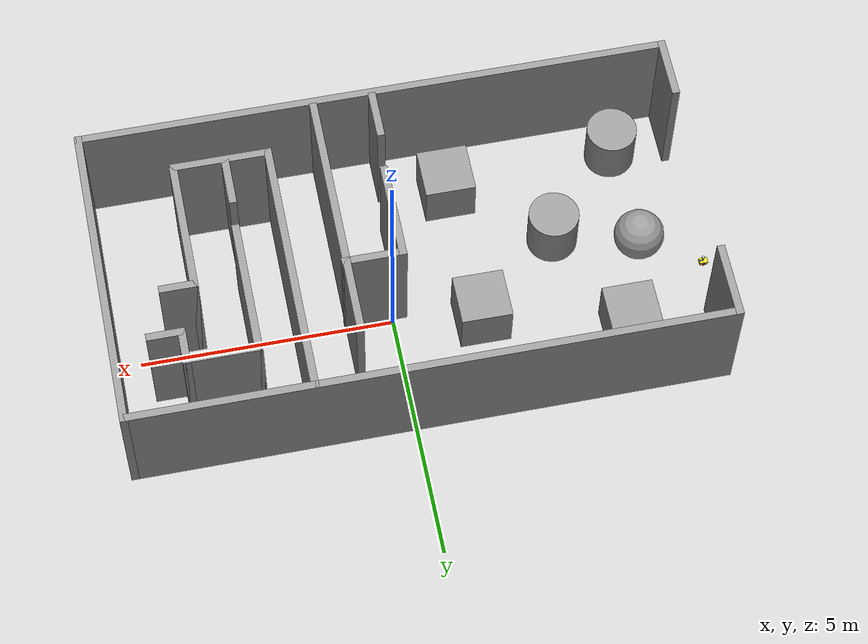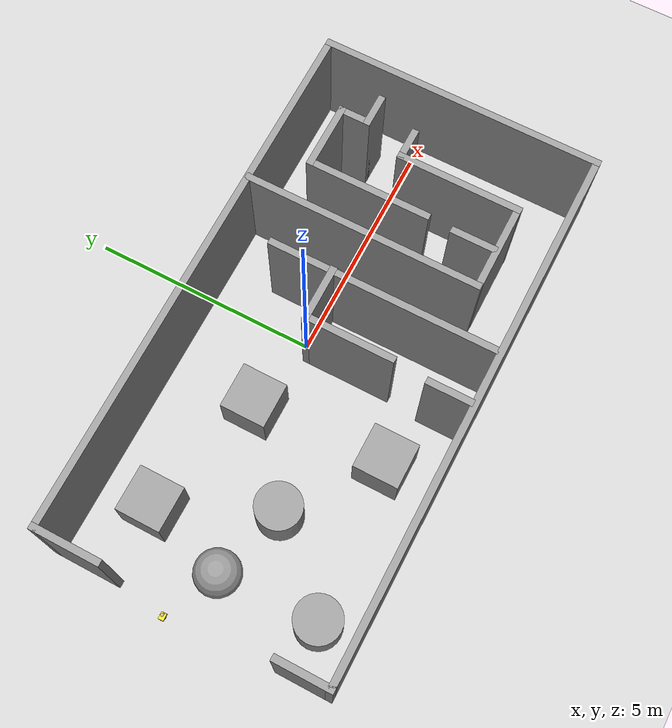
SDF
<sdf version="1.7">
 <world name="default">
  <light name="sun" type="directional">
   <pose>0 0 10 0 -0 0</pose>
   <diffuse>0.8 0.8 0.8 1</diffuse>
   <specular>0.2 0.2 0.2 1</specular>
   <attenuation>
    <range>1000</range>
    <constant>0.9</constant>
    <linear>0.01</linear>
    <quadratic>0.001</quadratic>
   </attenuation>
   <direction>-0.5 0.1 -0.9</direction>
   <spot><inner_angle>0</inner_angle><outer_angle>0</outer_angle><falloff>0</falloff></spot>
  </light>
  <model name="ground_plane">
   <static>1</static>
   <link name="link">
    <collision name="collision">
     <geometry><plane><normal>0 0 1</normal><size>100 100</size></plane></geometry>
     <surface><friction><ode><mu>100</mu><mu2>50</mu2></ode></friction></surface>
    </collision>
    <visual name="visual">
     <cast_shadows>0</cast_shadows>
     <geometry><plane><normal>0 0 1</normal><size>100 100</size></plane></geometry>
     <material>
      <script><uri>file://media/materials/scripts/gazebo.material</uri><name>Gazebo/Grey</name></script>
     </material>
    </visual>
    <kinematic>1</kinematic>
   </link>
  </model>
  <gravity>0 0 -9.8</gravity>
  <magnetic_field>6e-06 2.3e-05 -4.2e-05</magnetic_field>
  <atmosphere type="adiabatic"/>
  <physics type="ode">
   <max_step_size>0.001</max_step_size>
   <real_time_factor>1</real_time_factor>
   <real_time_update_rate>1000</real_time_update_rate>
  </physics>
  <scene><ambient>0.4 0.4 0.4 1</ambient><background>0.7 0.7 0.7 1</background><shadows>1</shadows></scene>
  <spherical_coordinates>
   <surface_model>EARTH_WGS84</surface_model>
   <latitude_deg>0</latitude_deg>
   <longitude_deg>0</longitude_deg>
   <elevation>0</elevation>
   <heading_deg>0</heading_deg>
  </spherical_coordinates>
  <model name="Untitled">
   <pose>-0.340997 -0.73255 0 0 -0 0</pose>
   <link name="Wall_0">
    <collision name="Wall_0_Collision">
     <geometry><box><size>11.75 0.15 2.5</size></box></geometry>
     <pose>0 0 1.25 0 -0 0</pose>
    </collision>
    <visual name="Wall_0_Visual">
     <pose>0 0 1.25 0 -0 0</pose>
     <geometry><box><size>11.75 0.15 2.5</size></box></geometry>
     <material>
      <script><uri>file://media/materials/scripts/gazebo.material</uri><name>Gazebo/Grey</name></script>
      <ambient>1 1 1 1</ambient>
     </material>
     <meta><layer>0</layer></meta>
    </visual>
    <pose>-0 -3.05 0 0 -0 0</pose>
   </link>
   <link name="Wall_1">
    <collision name="Wall_1_Collision">
     <geometry><box><size>6.25 0.15 2.5</size></box></geometry>
     <pose>0 0 1.25 0 -0 0</pose>
    </collision>
    <visual name="Wall_1_Visual">
     <pose>0 0 1.25 0 -0 0</pose>
     <geometry><box><size>6.25 0.15 2.5</size></box></geometry>
     <material>
      <script><uri>file://media/materials/scripts/gazebo.material</uri><name>Gazebo/Grey</name></script>
      <ambient>1 1 1 1</ambient>
     </material>
     <meta><layer>0</layer></meta>
    </visual>
    <pose>5.8 0 0 0 -0 1.5708</pose>
   </link>
   <link name="Wall_10">
    <collision name="Wall_10_Collision">
     <geometry><box><size>0.75 0.15 2.5</size></box></geometry>
     <pose>0 0 1.25 0 -0 0</pose>
    </collision>
    <visual name="Wall_10_Visual">
     <pose>0 0 1.25 0 -0 0</pose>
     <geometry><box><size>0.75 0.15 2.5</size></box></geometry>
     <material>
      <script><uri>file://media/materials/scripts/gazebo.material</uri><name>Gazebo/Grey</name></script>
      <ambient>1 1 1 1</ambient>
     </material>
     <meta><layer>0</layer></meta>
    </visual>
    <pose>4.39543 0.524299 0 0 -0 0</pose>
   </link>
   <link name="Wall_12">
    <collision name="Wall_12_Collision">
     <geometry><box><size>1 0.15 2.5</size></box></geometry>
     <pose>0 0 1.25 0 -0 0</pose>
    </collision>
    <visual name="Wall_12_Visual">
     <pose>0 0 1.25 0 -0 0</pose>
     <geometry><box><size>1 0.15 2.5</size></box></geometry>
     <material>
      <script><uri>file://media/materials/scripts/gazebo.material</uri><name>Gazebo/Grey</name></script>
      <ambient>1 1 1 1</ambient>
     </material>
     <meta><layer>0</layer></meta>
    </visual>
    <pose>3.0902 -1.57909 0 0 -0 1.5708</pose>
   </link>
   <link name="Wall_14">
    <collision name="Wall_14_Collision">
     <geometry><box><size>2.75 0.15 2.5</size></box></geometry>
     <pose>0 0 1.25 0 -0 0</pose>
    </collision>
    <visual name="Wall_14_Visual">
     <pose>0 0 1.25 0 -0 0</pose>
     <geometry><box><size>2.75 0.15 2.5</size></box></geometry>
     <material>
      <script><uri>file://media/materials/scripts/gazebo.material</uri><name>Gazebo/Grey</name></script>
      <ambient>1 1 1 1</ambient>
     </material>
     <meta><layer>0</layer></meta>
    </visual>
    <pose>3.13043 0.78431 0 0 -0 1.5708</pose>
   </link>
   <link name="Wall_15">
    <collision name="Wall_15_Collision">
     <geometry><box><size>1.5 0.15 2.5</size></box></geometry>
     <pose>0 0 1.25 0 -0 0</pose>
    </collision>
    <visual name="Wall_15_Visual">
     <pose>0 0 1.25 0 -0 0</pose>
     <geometry><box><size>1.5 0.15 2.5</size></box></geometry>
     <material>
      <script><uri>file://media/materials/scripts/gazebo.material</uri><name>Gazebo/Grey</name></script>
      <ambient>1 1 1 1</ambient>
     </material>
     <meta><layer>0</layer></meta>
    </visual>
    <pose>3.80543 2.08431 0 0 -0 0</pose>
   </link>
   <link name="Wall_16">
    <collision name="Wall_16_Collision">
     <geometry><box><size>0.75 0.15 2.5</size></box></geometry>
     <pose>0 0 1.25 0 -0 0</pose>
    </collision>
    <visual name="Wall_16_Visual">
     <pose>0 0 1.25 0 -0 0</pose>
     <geometry><box><size>0.75 0.15 2.5</size></box></geometry>
     <material>
      <script><uri>file://media/materials/scripts/gazebo.material</uri><name>Gazebo/Grey</name></script>
      <ambient>1 1 1 1</ambient>
     </material>
     <meta><layer>0</layer></meta>
    </visual>
    <pose>4.48043 1.78431 0 0 -0 -1.5708</pose>
   </link>
   <link name="Wall_17">
    <collision name="Wall_17_Collision">
     <geometry><box><size>0.75 0.15 2.5</size></box></geometry>
     <pose>0 0 1.25 0 -0 0</pose>
    </collision>
    <visual name="Wall_17_Visual">
     <pose>0 0 1.25 0 -0 0</pose>
     <geometry><box><size>0.75 0.15 2.5</size></box></geometry>
     <material>
      <script><uri>file://media/materials/scripts/gazebo.material</uri><name>Gazebo/Grey</name></script>
      <ambient>1 1 1 1</ambient>
     </material>
     <meta><layer>0</layer></meta>
    </visual>
    <pose>4.78043 1.48431 0 0 -0 0</pose>
   </link>
   <link name="Wall_19">
    <collision name="Wall_19_Collision">
     <geometry><box><size>5 0.15 2.5</size></box></geometry>
     <pose>0 0 1.25 0 -0 0</pose>
    </collision>
    <visual name="Wall_19_Visual">
     <pose>0 0 1.25 0 -0 0</pose>
     <geometry><box><size>5 0.15 2.5</size></box></geometry>
     <material>
      <script><uri>file://media/materials/scripts/gazebo.material</uri><name>Gazebo/Grey</name></script>
      <ambient>1 1 1 1</ambient>
     </material>
     <meta><layer>0</layer></meta>
    </visual>
    <pose>1.19952 -0.504318 0 0 -0 1.5708</pose>
   </link>
   <link name="Wall_2">
    <collision name="Wall_2_Collision">
     <geometry><box><size>11.75 0.15 2.5</size></box></geometry>
     <pose>0 0 1.25 0 -0 0</pose>
    </collision>
    <visual name="Wall_2_Visual">
     <pose>0 0 1.25 0 -0 0</pose>
     <geometry><box><size>11.75 0.15 2.5</size></box></geometry>
     <material>
      <script><uri>file://media/materials/scripts/gazebo.material</uri><name>Gazebo/Grey</name></script>
      <ambient>1 1 1 1</ambient>
     </material>
     <meta><layer>0</layer></meta>
    </visual>
    <pose>-0 3.05 0 0 -0 3.14159</pose>
   </link>
   <link name="Wall_21">
    <collision name="Wall_21_Collision">
     <geometry><box><size>1.25 0.15 2.5</size></box></geometry>
     <pose>0 0 1.25 0 -0 0</pose>
    </collision>
    <visual name="Wall_21_Visual">
     <pose>0 0 1.25 0 -0 0</pose>
     <geometry><box><size>1.25 0.15 2.5</size></box></geometry>
     <material>
      <script><uri>file://media/materials/scripts/gazebo.material</uri><name>Gazebo/Grey</name></script>
      <ambient>1 1 1 1</ambient>
     </material>
     <meta><layer>0</layer></meta>
    </visual>
    <pose>0.669636 0.590557 0 0 -0 3.14159</pose>
   </link>
   <link name="Wall_22">
    <collision name="Wall_22_Collision">
     <geometry><box><size>2 0.15 2.5</size></box></geometry>
     <pose>0 0 1.25 0 -0 0</pose>
    </collision>
    <visual name="Wall_22_Visual">
     <pose>0 0 1.25 0 -0 0</pose>
     <geometry><box><size>2 0.15 2.5</size></box></geometry>
     <material>
      <script><uri>file://media/materials/scripts/gazebo.material</uri><name>Gazebo/Grey</name></script>
      <ambient>1 1 1 1</ambient>
     </material>
     <meta><layer>0</layer></meta>
    </visual>
    <pose>0.119636 -0.334443 0 0 -0 -1.5708</pose>
   </link>
   <link name="Wall_24">
    <collision name="Wall_24_Collision">
     <geometry><box><size>1 0.15 2.5</size></box></geometry>
     <pose>0 0 1.25 0 -0 0</pose>
    </collision>
    <visual name="Wall_24_Visual">
     <pose>0 0 1.25 0 -0 0</pose>
     <geometry><box><size>1 0.15 2.5</size></box></geometry>
     <material>
      <script><uri>file://media/materials/scripts/gazebo.material</uri><name>Gazebo/Grey</name></script>
      <ambient>1 1 1 1</ambient>
     </material>
     <meta><layer>0</layer></meta>
    </visual>
    <pose>0.032936 -2.52443 0 0 -0 1.5708</pose>
   </link>
   <link name="Wall_3">
    <collision name="Wall_3_Collision">
     <geometry><box><size>1.5 0.15 2.5</size></box></geometry>
     <pose>0 0 1.25 0 -0 0</pose>
    </collision>
    <visual name="Wall_3_Visual">
     <pose>0 0 1.25 0 -0 0</pose>
     <geometry><box><size>1.5 0.15 2.5</size></box></geometry>
     <material>
      <script><uri>file://media/materials/scripts/gazebo.material</uri><name>Gazebo/Grey</name></script>
      <ambient>1 1 1 1</ambient>
     </material>
     <meta><layer>0</layer></meta>
    </visual>
    <pose>-5.8 2.375 0 0 -0 -1.5708</pose>
   </link>
   <link name="Wall_5">
    <collision name="Wall_5_Collision">
     <geometry><box><size>1.25 0.15 2.5</size></box></geometry>
     <pose>0 0 1.25 0 -0 0</pose>
    </collision>
    <visual name="Wall_5_Visual">
     <pose>0 0 1.25 0 -0 0</pose>
     <geometry><box><size>1.25 0.15 2.5</size></box></geometry>
     <material>
      <script><uri>file://media/materials/scripts/gazebo.material</uri><name>Gazebo/Grey</name></script>
      <ambient>1 1 1 1</ambient>
     </material>
     <meta><layer>0</layer></meta>
    </visual>
    <pose>-5.8 -2.5 0 0 -0 1.5708</pose>
   </link>
   <link name="Wall_7">
    <collision name="Wall_7_Collision">
     <geometry><box><size>5.25 0.15 2.5</size></box></geometry>
     <pose>0 0 1.25 0 -0 0</pose>
    </collision>
    <visual name="Wall_7_Visual">
     <pose>0 0 1.25 0 -0 0</pose>
     <geometry><box><size>5.25 0.15 2.5</size></box></geometry>
     <material>
      <script><uri>file://media/materials/scripts/gazebo.material</uri><name>Gazebo/Grey</name></script>
      <ambient>1 1 1 1</ambient>
     </material>
     <meta><layer>0</layer></meta>
    </visual>
    <pose>2.24543 0.474299 0 0 -0 -1.5708</pose>
   </link>
   <link name="Wall_8">
    <collision name="Wall_8_Collision">
     <geometry><box><size>2 0.15 2.5</size></box></geometry>
     <pose>0 0 1.25 0 -0 0</pose>
    </collision>
    <visual name="Wall_8_Visual">
     <pose>0 0 1.25 0 -0 0</pose>
     <geometry><box><size>2 0.15 2.5</size></box></geometry>
     <material>
      <script><uri>file://media/materials/scripts/gazebo.material</uri><name>Gazebo/Grey</name></script>
      <ambient>1 1 1 1</ambient>
     </material>
     <meta><layer>0</layer></meta>
    </visual>
    <pose>3.17043 -2.0757 0 0 -0 0</pose>
   </link>
   <link name="Wall_9">
    <collision name="Wall_9_Collision">
     <geometry><box><size>2.75 0.15 2.5</size></box></geometry>
     <pose>0 0 1.25 0 -0 0</pose>
    </collision>
    <visual name="Wall_9_Visual">
     <pose>0 0 1.25 0 -0 0</pose>
     <geometry><box><size>2.75 0.15 2.5</size></box></geometry>
     <material>
      <script><uri>file://media/materials/scripts/gazebo.material</uri><name>Gazebo/Grey</name></script>
      <ambient>1 1 1 1</ambient>
     </material>
     <meta><layer>0</layer></meta>
    </visual>
    <pose>4.09543 -0.775701 0 0 -0 1.5708</pose>
   </link>
   <static>1</static>
  </model>
  <model name="unit_box">
   <pose>-1.58745 -2.64182 0.5 0 -0 5e-06</pose>
   <link name="link">
    <inertial>
     <mass>1</mass>
     <inertia>
      <ixx>0.166667</ixx>
      <ixy>0</ixy>
      <ixz>0</ixz>
      <iyy>0.166667</iyy>
      <iyz>0</iyz>
      <izz>0.166667</izz>
     </inertia>
    </inertial>
    <collision name="collision"><geometry><box><size>1 1 1</size></box></geometry></collision>
    <visual name="visual">
     <geometry><box><size>1 1 1</size></box></geometry>
     <material>
      <script><name>Gazebo/Grey</name><uri>file://media/materials/scripts/gazebo.material</uri></script>
     </material>
    </visual>
    <kinematic>1</kinematic>
   </link>
  </model>
  <model name="unit_cylinder">
   <pose>-3.4676 -1.23387 0.499994 -4e-06 -4e-06 -0</pose>
   <link name="link">
    <inertial>
     <mass>1</mass>
     <inertia><ixx>0.145833</ixx><ixy>0</ixy><ixz>0</ixz><iyy>0.145833</iyy><iyz>0</iyz><izz>0.125</izz></inertia>
    </inertial>
    <collision name="collision">
     <geometry><cylinder><radius>0.5</radius><length>1</length></cylinder></geometry>
    </collision>
    <visual name="visual">
     <geometry><cylinder><radius>0.5</radius><length>1</length></cylinder></geometry>
     <material>
      <script><name>Gazebo/Grey</name><uri>file://media/materials/scripts/gazebo.material</uri></script>
     </material>
    </visual>
    <kinematic>1</kinematic>
   </link>
  </model>
  <model name="unit_box_0">
   <pose>-1.70471 0.287631 0.495109 6e-06 -0.009793 5e-06</pose>
   <link name="link">
    <inertial>
     <mass>1</mass>
     <inertia>
      <ixx>0.166667</ixx>
      <ixy>0</ixy>
      <ixz>0</ixz>
      <iyy>0.166667</iyy>
      <iyz>0</iyz>
      <izz>0.166667</izz>
     </inertia>
    </inertial>
    <collision name="collision"><geometry><box><size>1 1 1</size></box></geometry></collision>
    <visual name="visual">
     <geometry><box><size>1 1 1</size></box></geometry>
     <material>
      <script><name>Gazebo/Grey</name><uri>file://media/materials/scripts/gazebo.material</uri></script>
     </material>
    </visual>
    <kinematic>1</kinematic>
   </link>
  </model>
  <model name="unit_cylinder_0">
   <pose>-5.03626 -2.93689 0.499998 3e-06 4e-06 -0</pose>
   <link name="link">
    <inertial>
     <mass>1</mass>
     <inertia><ixx>0.145833</ixx><ixy>0</ixy><ixz>0</ixz><iyy>0.145833</iyy><iyz>0</iyz><izz>0.125</izz></inertia>
    </inertial>
    <collision name="collision">
     <geometry><cylinder><radius>0.5</radius><length>1</length></cylinder></geometry>
    </collision>
    <visual name="visual">
     <geometry><cylinder><radius>0.5</radius><length>1</length></cylinder></geometry>
     <material>
      <script><name>Gazebo/Grey</name><uri>file://media/materials/scripts/gazebo.material</uri></script>
     </material>
    </visual>
    <kinematic>1</kinematic>
   </link>
  </model>
  <model name="unit_box_1">
   <pose>-4.50892 1.06605 0.499995 -1e-05 -0 5e-06</pose>
   <link name="link">
    <inertial>
     <mass>1</mass>
     <inertia>
      <ixx>0.166667</ixx>
      <ixy>0</ixy>
      <ixz>0</ixz>
      <iyy>0.166667</iyy>
      <iyz>0</iyz>
      <izz>0.166667</izz>
     </inertia>
    </inertial>
    <collision name="collision"><geometry><box><size>1 1 1</size></box></geometry></collision>
    <visual name="visual">
     <geometry><box><size>1 1 1</size></box></geometry>
     <material>
      <script><name>Gazebo/Grey</name><uri>file://media/materials/scripts/gazebo.material</uri></script>
     </material>
    </visual>
    <kinematic>1</kinematic>
   </link>
  </model>
  <model name="unit_sphere">
   <pose>-5.10616 -0.74953 0.5 0 -0 0</pose>
   <link name="link">
    <inertial>
     <mass>1</mass>
     <inertia><ixx>0.1</ixx><ixy>0</ixy><ixz>0</ixz><iyy>0.1</iyy><iyz>0</iyz><izz>0.1</izz></inertia>
    </inertial>
    <collision name="collision"><geometry><sphere><radius>0.5</radius></sphere></geometry></collision>
    <visual name="visual">
     <geometry><sphere><radius>0.5</radius></sphere></geometry>
     <material>
      <script><name>Gazebo/Grey</name><uri>file://media/materials/scripts/gazebo.material</uri></script>
     </material>
    </visual>
   </link>
  </model>
  <model name="mycar">
   <link name="base_footprint">
    <inertial>
     <pose>0.000167 0 0.055586 0 -0 0</pose>
     <mass>5.03</mass>
     <inertia>
      <ixx>0.00902417</ixx>
      <ixy>0</ixy>
      <ixz>-5.89074e-05</ixz>
      <iyy>0.0170629</iyy>
      <iyz>0</iyz>
      <izz>0.0133784</izz>
     </inertia>
    </inertial>
    <collision name="base_footprint_fixed_joint_lump__base_link_collision">
     <pose>0 0 0.055 0 -0 0</pose>
     <geometry><box><size>0.16 0.12 0.08</size></box></geometry>
    </collision>
    <collision name="base_footprint_fixed_joint_lump__C1_camera_collision_1">
     <pose>0.06 0 0.105 0 -0 0</pose>
     <geometry><box><size>0.02 0.03 0.02</size></box></geometry>
    </collision>
    <collision name="base_footprint_fixed_joint_lump__S1_laser_support_collision_2">
     <pose>0.012 0 0.145 0 -0 0</pose>
     <geometry><cylinder><length>0.1</length><radius>0.015</radius></cylinder></geometry>
    </collision>
    <collision name="base_footprint_fixed_joint_lump__S1_laser_collision_3">
     <pose>0.012 0 0.21 0 -0 0</pose>
     <geometry><cylinder><length>0.03</length><radius>0.03</radius></cylinder></geometry>
    </collision>
    <visual name="base_footprint_visual"><geometry><sphere><radius>0.001</radius></sphere></geometry></visual>
    <visual name="base_footprint_fixed_joint_lump__base_link_visual_1">
     <pose>0 0 0.055 0 -0 0</pose>
     <geometry><box><size>0.16 0.12 0.08</size></box></geometry>
     <material>
      <script><name>Gazebo/Yellow</name><uri>file://media/materials/scripts/gazebo.material</uri></script>
     </material>
    </visual>
    <visual name="base_footprint_fixed_joint_lump__C1_camera_visual_2">
     <pose>0.06 0 0.105 0 -0 0</pose>
     <geometry><box><size>0.02 0.03 0.02</size></box></geometry>
    </visual>
    <visual name="base_footprint_fixed_joint_lump__S1_laser_support_visual_3">
     <pose>0.012 0 0.145 0 -0 0</pose>
     <geometry><cylinder><length>0.1</length><radius>0.015</radius></cylinder></geometry>
    </visual>
    <visual name="base_footprint_fixed_joint_lump__S1_laser_visual_4">
     <pose>0.012 0 0.21 0 -0 0</pose>
     <geometry><cylinder><length>0.03</length><radius>0.03</radius></cylinder></geometry>
    </visual>
    <sensor name="camera_node" type="camera">
     <update_rate>30</update_rate>
     <camera name="head">
      <horizontal_fov>1.39626</horizontal_fov>
      <image><width>1280</width><height>720</height><format>R8G8B8</format></image>
      <clip><near>0.02</near><far>300</far></clip>
      <noise><type>gaussian</type><mean>0</mean><stddev>0.007</stddev></noise>
     </camera>
     <plugin name="gazebo_camera" filename="libgazebo_ros_camera.so">
      <alwaysOn>1</alwaysOn>
      <updateRate>0.0</updateRate>
      <cameraName>/camera</cameraName>
      <imageTopicName>image_raw</imageTopicName>
      <cameraInfoTopicName>camera_info</cameraInfoTopicName>
      <frameName>C1_camera</frameName>
      <hackBaseline>0.07</hackBaseline>
      <distortionK1>0.0</distortionK1>
      <distortionK2>0.0</distortionK2>
      <distortionK3>0.0</distortionK3>
      <distortionT1>0.0</distortionT1>
      <distortionT2>0.0</distortionT2>
      <robotNamespace>/</robotNamespace>
     </plugin>
     <pose>0.06 0 0.105 0 -0 0</pose>
    </sensor>
    <sensor name="rplidar" type="ray">
     <visualize>1</visualize>
     <update_rate>5.5</update_rate>
     <ray>
      <scan>
       <horizontal>
        <samples>360</samples>
        <resolution>1</resolution>
        <min_angle>-3</min_angle>
        <max_angle>3</max_angle>
       </horizontal>
       <vertical><samples>1</samples><min_angle>0</min_angle><max_angle>0</max_angle></vertical>
      </scan>
      <range><min>0.1</min><max>30</max><resolution>0.01</resolution></range>
      <noise><type>gaussian</type><mean>0</mean><stddev>0.01</stddev></noise>
     </ray>
     <plugin name="gazebo_rplidar" filename="libgazebo_ros_laser.so">
      <topicName>/scan</topicName>
      <frameName>S1_laser</frameName>
      <robotNamespace>/</robotNamespace>
     </plugin>
     <pose>0.012 0 0.21 0 -0 0</pose>
    </sensor>
   </link>
   <joint name="back_wheel2base_link" type="revolute">
    <pose relative_to="base_footprint">-0.076 0 0.0075 0 -0 0</pose>
    <parent>base_footprint</parent>
    <child>back_wheel</child>
    <axis>
     <xyz>1 1 1</xyz>
     <limit><lower>-1e+16</lower><upper>1e+16</upper></limit>
     <dynamics><spring_reference>0</spring_reference><spring_stiffness>0</spring_stiffness></dynamics>
    </axis>
   </joint>
   <link name="back_wheel">
    <pose relative_to="back_wheel2base_link">0 0 0 0 -0 0</pose>
    <inertial>
     <mass>0.03</mass>
     <inertia>
      <ixx>6.75e-07</ixx>
      <ixy>0</ixy>
      <ixz>0</ixz>
      <iyy>6.75e-07</iyy>
      <iyz>0</iyz>
      <izz>6.75e-07</izz>
     </inertia>
    </inertial>
    <collision name="back_wheel_collision">
     <geometry><sphere><radius>0.0075</radius></sphere></geometry>
    </collision>
    <visual name="back_wheel_visual">
     <geometry><sphere><radius>0.0075</radius></sphere></geometry>
     <material>
      <script><name>Gazebo/Red</name><uri>file://media/materials/scripts/gazebo.material</uri></script>
     </material>
    </visual>
   </link>
   <joint name="front_wheel2base_link" type="revolute">
    <pose relative_to="base_footprint">0.076 0 0.0075 0 -0 0</pose>
    <parent>base_footprint</parent>
    <child>front_wheel</child>
    <axis>
     <xyz>1 1 1</xyz>
     <limit><lower>-1e+16</lower><upper>1e+16</upper></limit>
     <dynamics><spring_reference>0</spring_reference><spring_stiffness>0</spring_stiffness></dynamics>
    </axis>
   </joint>
   <link name="front_wheel">
    <pose relative_to="front_wheel2base_link">0 0 0 0 -0 0</pose>
    <inertial>
     <mass>0.03</mass>
     <inertia>
      <ixx>6.75e-07</ixx>
      <ixy>0</ixy>
      <ixz>0</ixz>
      <iyy>6.75e-07</iyy>
      <iyz>0</iyz>
      <izz>6.75e-07</izz>
     </inertia>
    </inertial>
    <collision name="front_wheel_collision">
     <geometry><sphere><radius>0.0075</radius></sphere></geometry>
    </collision>
    <visual name="front_wheel_visual">
     <geometry><sphere><radius>0.0075</radius></sphere></geometry>
     <material>
      <script><name>Gazebo/Red</name><uri>file://media/materials/scripts/gazebo.material</uri></script>
     </material>
    </visual>
   </link>
   <joint name="left_wheel2base_link" type="revolute">
    <pose relative_to="base_footprint">0 0.06 0.0325 0 -0 0</pose>
    <parent>base_footprint</parent>
    <child>left_wheel</child>
    <axis>
     <xyz>0 1 0</xyz>
     <limit><lower>-1e+16</lower><upper>1e+16</upper></limit>
     <dynamics><spring_reference>0</spring_reference><spring_stiffness>0</spring_stiffness></dynamics>
    </axis>
   </joint>
   <link name="left_wheel">
    <pose relative_to="left_wheel2base_link">0 0 0 0 -0 0</pose>
    <inertial>
     <mass>0.05</mass>
     <inertia>
      <ixx>1.41406e-05</ixx>
      <ixy>0</ixy>
      <ixz>0</ixz>
      <iyy>1.41406e-05</iyy>
      <iyz>0</iyz>
      <izz>2.64063e-05</izz>
     </inertia>
    </inertial>
    <collision name="left_wheel_collision">
     <pose>0 0 0 1.5705 -0 0</pose>
     <geometry><cylinder><length>0.015</length><radius>0.0325</radius></cylinder></geometry>
    </collision>
    <visual name="left_wheel_visual">
     <pose>0 0 0 1.5705 -0 0</pose>
     <geometry><cylinder><length>0.015</length><radius>0.0325</radius></cylinder></geometry>
     <material>
      <script><name>Gazebo/Red</name><uri>file://media/materials/scripts/gazebo.material</uri></script>
     </material>
    </visual>
   </link>
   <joint name="right_wheel2base_link" type="revolute">
    <pose relative_to="base_footprint">0 -0.06 0.0325 0 -0 0</pose>
    <parent>base_footprint</parent>
    <child>right_wheel</child>
    <axis>
     <xyz>0 1 0</xyz>
     <limit><lower>-1e+16</lower><upper>1e+16</upper></limit>
     <dynamics><spring_reference>0</spring_reference><spring_stiffness>0</spring_stiffness></dynamics>
    </axis>
   </joint>
   <link name="right_wheel">
    <pose relative_to="right_wheel2base_link">0 0 0 0 -0 0</pose>
    <inertial>
     <mass>0.05</mass>
     <inertia>
      <ixx>1.41406e-05</ixx>
      <ixy>0</ixy>
      <ixz>0</ixz>
      <iyy>1.41406e-05</iyy>
      <iyz>0</iyz>
      <izz>2.64063e-05</izz>
     </inertia>
    </inertial>
    <collision name="right_wheel_collision">
     <pose>0 0 0 1.5705 -0 0</pose>
     <geometry><cylinder><length>0.015</length><radius>0.0325</radius></cylinder></geometry>
    </collision>
    <visual name="right_wheel_visual">
     <pose>0 0 0 1.5705 -0 0</pose>
     <geometry><cylinder><length>0.015</length><radius>0.0325</radius></cylinder></geometry>
     <material>
      <script><name>Gazebo/Red</name><uri>file://media/materials/scripts/gazebo.material</uri></script>
     </material>
    </visual>
   </link>
   <static>0</static>
   <plugin name="differential_drive_controller" filename="libgazebo_ros_diff_drive.so">
    <rosDebugLevel>Debug</rosDebugLevel>
    <publishWheelTF>1</publishWheelTF>
    <robotNamespace>/</robotNamespace>
    <publishTf>1</publishTf>
    <publishWheelJointState>1</publishWheelJointState>
    <alwaysOn>1</alwaysOn>
    <updateRate>100.0</updateRate>
    <legacyMode>1</legacyMode>
    <leftJoint>left_wheel2base_link</leftJoint>
    <rightJoint>right_wheel2base_link</rightJoint>
    <wheelSeparation>0.24</wheelSeparation>
    <wheelDiameter>0.065</wheelDiameter>
    <broadcastTF>1</broadcastTF>
    <wheelTorque>30</wheelTorque>
    <wheelAcceleration>1.8</wheelAcceleration>
    <commandTopic>cmd_vel</commandTopic>
    <odometryFrame>odom</odometryFrame>
    <odometryTopic>odom</odometryTopic>
    <robotBaseFrame>base_footprint</robotBaseFrame>
   </plugin>
   <pose>-6.30875 -0.143695 -4e-06 2.5e-05 2e-06 0.010978</pose>
  </model>
 </world>
</sdf>
